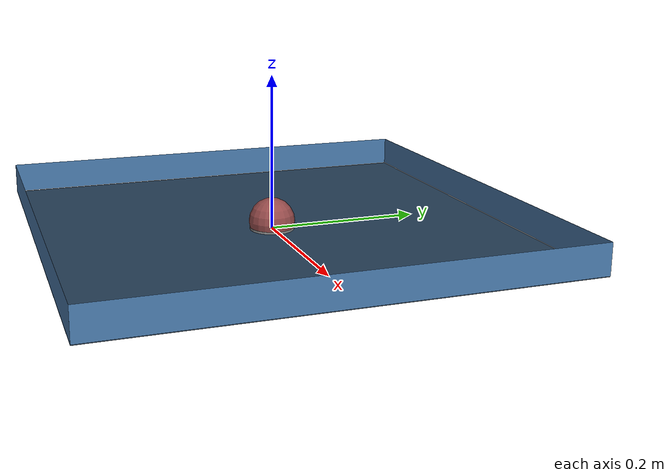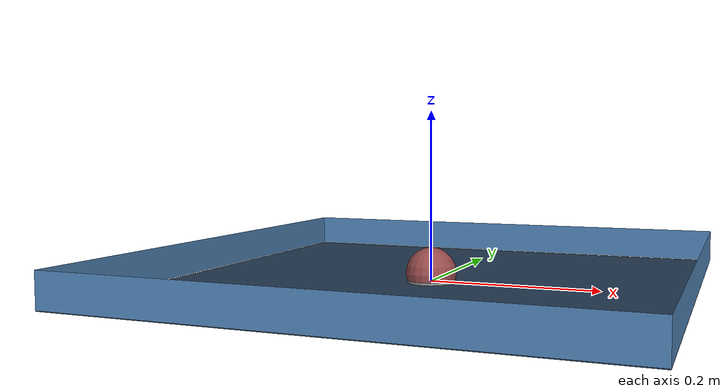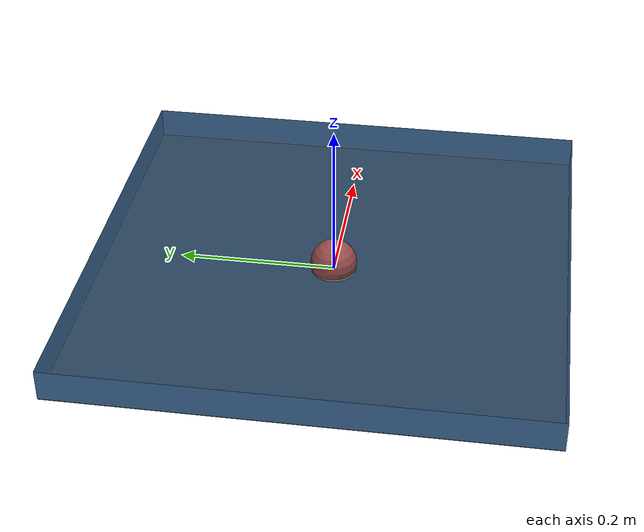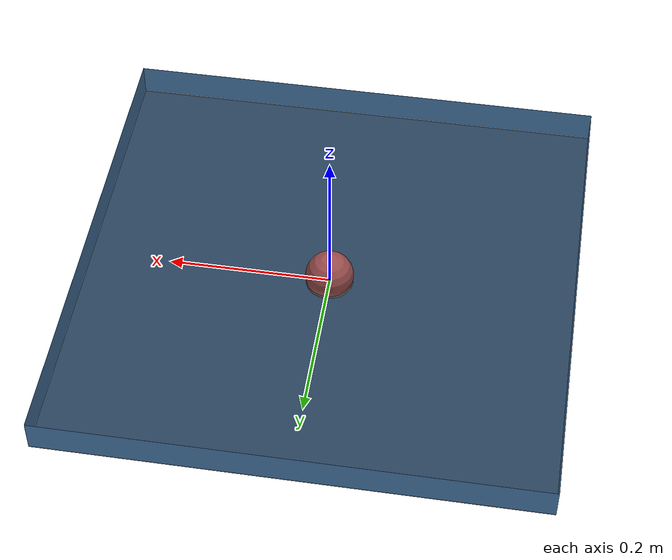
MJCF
<mujoco model="planar point mass">
  <include file="./common/skybox.xml"/>
  <include file="./common/visual.xml"/>
  <include file="./common/materials.xml"/>

  <asset>
    <texture name="texture_blue" type="2d" builtin="checker" rgb1=".1 .2 .3"
     rgb2=".2 .3 .4" width="300" height="300"/>
    <material name="material_blue" texture="texture_blue" texrepeat="0 0" reflectance=".2"/>
  </asset>

  <option timestep="0.02">
    <flag contact="disable"/>
  </option>

  <default>
    <joint type="hinge" axis="0 0 1" limited="true" range="-.29 .29" damping="1"/>
    <motor gear=".1" ctrlrange="-1 1" ctrllimited="true"/>
  </default>

  <worldbody>
    <light name="light" pos="0 0 1"/>
    <camera name="top" pos="0 0 .75" quat="1 0 0 0"/>

    <!-- === Color === -->

    <!-- Normal -->
    <geom name="ground" type="plane" pos="0 0 0" size=".3 .3 .1" material="grid"/>
    <geom name="wall_x" type="plane" pos="-.3 0 .02" zaxis="1 0 0"  size=".02 .3 .02" material="decoration"/>
    <geom name="wall_y" type="plane" pos="0 -.3 .02" zaxis="0 1 0"  size=".3 .02 .02" material="decoration"/>
    <geom name="wall_neg_x" type="plane" pos=".3 0 .02" zaxis="-1 0 0"  size=".02 .3 .02" material="decoration"/>
    <geom name="wall_neg_y" type="plane" pos="0 .3 .02" zaxis="0 -1 0"  size=".3 .02 .02" material="decoration"/>

    <!-- White -->

    <!-- Blue -->

    <!-- === End of Color [Normal] === -->

    <body name="pointmass" pos="0 0 .01">
      <camera name="self" pos="0 0 0.5" quat="1 0 0 0"/>
      <joint name="root_x" type="slide"  pos="0 0 0" axis="1 0 0" />
      <joint name="root_y" type="slide"  pos="0 0 0" axis="0 1 0" />

      <geom name="pointmass" type="sphere" size=".03" material="self" mass=".3"/>
    </body>

    <geom name="target" pos="0 0 .01" material="target" type="sphere" size=".03"/>

    <geom name="other0" pos="0 0 -0.006" type="sphere" size=".03" rgba="0.5 0.5 0.5 1"/>
    <geom name="other1" pos="0 0 -0.006" type="sphere" size=".03" rgba="0.5 0.5 0.5 1"/>
    <geom name="other2" pos="0 0 -0.006" type="sphere" size=".03" rgba="0.5 0.5 0.5 1"/>
    <geom name="other3" pos="0 0 -0.006" type="sphere" size=".03" rgba="0.5 0.5 0.5 1"/>
    <geom name="other4" pos="0 0 -0.006" type="sphere" size=".03" rgba="0.5 0.5 0.5 1"/>
    <geom name="other5" pos="0 0 -0.006" type="sphere" size=".03" rgba="0.5 0.5 0.5 1"/>
    <geom name="other6" pos="0 0 -0.006" type="sphere" size=".03" rgba="0.5 0.5 0.5 1"/>
    <geom name="other7" pos="0 0 -0.006" type="sphere" size=".03" rgba="0.5 0.5 0.5 1"/>
    <geom name="other8" pos="0 0 -0.006" type="sphere" size=".03" rgba="0.5 0.5 0.5 1"/>
    <geom name="other9" pos="0 0 -0.006" type="sphere" size=".03" rgba="0.5 0.5 0.5 1"/>
    <geom name="other10" pos="0 0 -0.006" type="sphere" size=".03" rgba="0.5 0.5 0.5 1"/>
    <geom name="other11" pos="0 0 -0.006" type="sphere" size=".03" rgba="0.5 0.5 0.5 1"/>
    <geom name="other12" pos="0 0 -0.006" type="sphere" size=".03" rgba="0.5 0.5 0.5 1"/>
    <geom name="other13" pos="0 0 -0.006" type="sphere" size=".03" rgba="0.5 0.5 0.5 1"/>
    <geom name="other14" pos="0 0 -0.006" type="sphere" size=".03" rgba="0.5 0.5 0.5 1"/>
    <geom name="other15" pos="0 0 -0.006" type="sphere" size=".03" rgba="0.5 0.5 0.5 1"/>
  </worldbody>

  <tendon>
    <fixed name="t1">
      <joint joint="root_x" coef="1"/>
      <joint joint="root_y" coef="0"/>
    </fixed>
    <fixed name="t2">
      <joint joint="root_x" coef="0"/>
      <joint joint="root_y" coef="1"/>
    </fixed>
  </tendon>

  <actuator>
    <motor name="t1" tendon="t1"/>
    <motor name="t2" tendon="t2"/>
  </actuator>
</mujoco>

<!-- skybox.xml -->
<mujoco>
    <asset>
        <texture name="skybox" type="skybox" builtin="gradient" rgb1=".4 .6 .8" rgb2="0 0 0"
                 width="800" height="800" mark="random" markrgb="1 1 1"/>
    </asset>
</mujoco>

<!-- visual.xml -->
<mujoco>
    <visual>
        <headlight ambient=".4 .4 .4" diffuse=".8 .8 .8" specular="0.1 0.1 0.1"/>
        <map znear=".01"/>
        <quality shadowsize="2048"/>
    </visual>
</mujoco>

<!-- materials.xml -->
<!--
Common textures, colors and materials to be used throughout this suite. Some
materials such as xxx_highlight are activated on occurence of certain events,
for example receiving a positive reward.
-->
<mujoco>
    <asset>
        <texture name="grid" type="2d" builtin="checker" rgb1=".1 .2 .3" rgb2=".2 .3 .4" width="300" height="300" mark="edge" markrgb=".2 .3 .4"/>
        <material name="grid" texture="grid" texrepeat="1 1" texuniform="true" reflectance=".2"/>
        <material name="self" rgba=".7 .5 .3 1"/>
        <material name="self_default" rgba=".7 .5 .3 1"/>
        <material name="self_highlight" rgba="0 .5 .3 1"/>
        <material name="effector" rgba=".7 .4 .2 1"/>
        <material name="effector_default" rgba=".7 .4 .2 1"/>
        <material name="effector_highlight" rgba="0 .5 .3 1"/>
        <material name="decoration" rgba=".3 .5 .7 1"/>
        <material name="eye" rgba="0 .2 1 1"/>
        <material name="target" rgba=".6 .3 .3 1"/>
        <material name="target_default" rgba=".6 .3 .3 1"/>
        <material name="target_highlight" rgba=".6 .3 .3 .4"/>
        <material name="site" rgba=".5 .5 .5 .3"/>
    </asset>
</mujoco>
